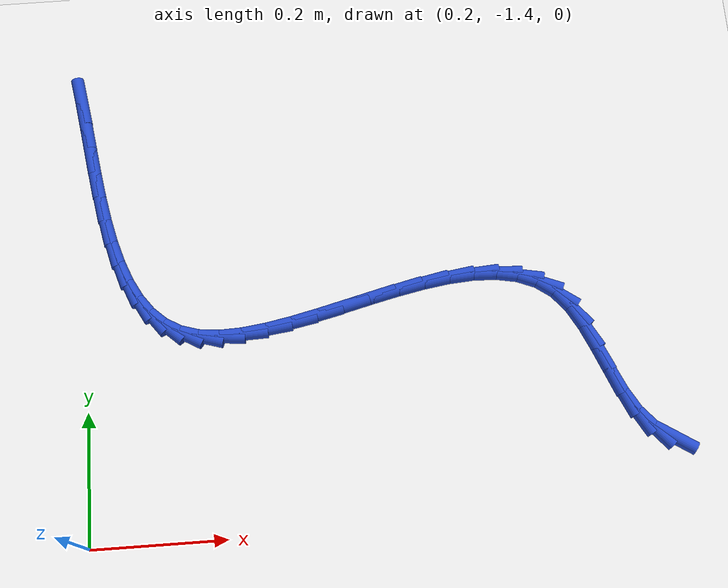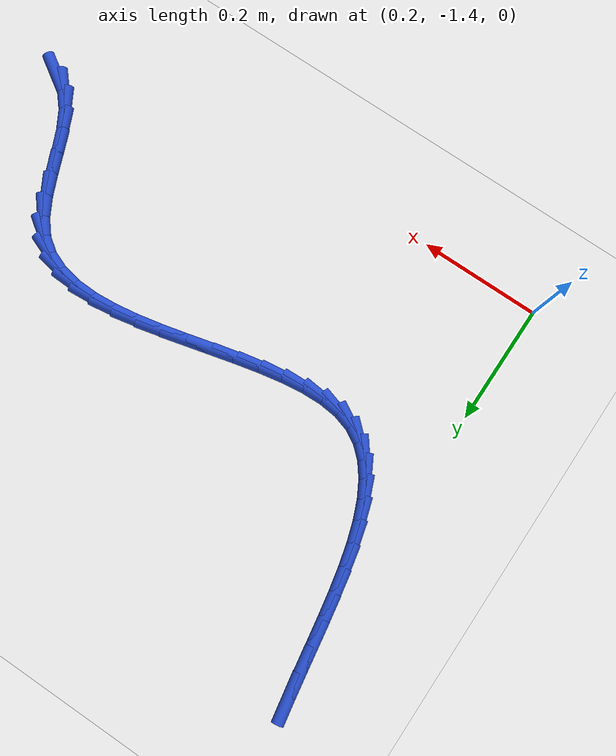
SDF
<sdf version="1.6">
 <world name="default">
  <model name="ground_plane">
   <static>1</static>
   <link name="link">
    <collision name="collision">
     <geometry><plane><normal>0 0 1</normal><size>100 100</size></plane></geometry>
     <surface><friction><ode><mu>100</mu><mu2>50</mu2></ode></friction></surface>
    </collision>
    <visual name="visual">
     <cast_shadows>0</cast_shadows>
     <geometry><plane><normal>0 0 1</normal><size>100 100</size></plane></geometry>
     <material>
      <script><uri>file://media/materials/scripts/gazebo.material</uri><name>Gazebo/WhiteGlow</name></script>
     </material>
    </visual>
   </link>
  </model>
  <model name="line">
   <link name="link_164">
    <pose>1.0530648503604034 -1.298341308711438 0.01 0 1.57 -0.5783632018826566</pose>
    <collision name="collision">
     <geometry><cylinder><radius>0.01</radius><length>0.08</length></cylinder></geometry>
    </collision>
    <visual name="visual">
     <material>
      <script><name>Gazebo/Blue</name><uri>file://media/materials/scripts/gazebo.material</uri></script>
     </material>
     <geometry><cylinder><radius>0.01</radius><length>0.08</length></cylinder></geometry>
    </visual>
   </link>
   <link name="link_165">
    <pose>1.0280571245131487 -1.2820154758836633 0.01 0 1.57 -0.8617952457543253</pose>
    <collision name="collision">
     <geometry><cylinder><radius>0.01</radius><length>0.08</length></cylinder></geometry>
    </collision>
    <visual name="visual">
     <material>
      <script><name>Gazebo/Blue</name><uri>file://media/materials/scripts/gazebo.material</uri></script>
     </material>
     <geometry><cylinder><radius>0.01</radius><length>0.08</length></cylinder></geometry>
    </visual>
   </link>
   <link name="link_166">
    <pose>1.007418347064766 -1.2579551588173083 0.01 0 1.57 -1.0571612030926565</pose>
    <collision name="collision">
     <geometry><cylinder><radius>0.01</radius><length>0.08</length></cylinder></geometry>
    </collision>
    <visual name="visual">
     <material>
      <script><name>Gazebo/Blue</name><uri>file://media/materials/scripts/gazebo.material</uri></script>
     </material>
     <geometry><cylinder><radius>0.01</radius><length>0.08</length></cylinder></geometry>
    </visual>
   </link>
   <link name="link_167">
    <pose>0.9903157041266589 -1.2276389001822656 0.01 0 1.57 -1.15729824692002</pose>
    <collision name="collision">
     <geometry><cylinder><radius>0.01</radius><length>0.08</length></cylinder></geometry>
    </collision>
    <visual name="visual">
     <material>
      <script><name>Gazebo/Blue</name><uri>file://media/materials/scripts/gazebo.material</uri></script>
     </material>
     <geometry><cylinder><radius>0.01</radius><length>0.08</length></cylinder></geometry>
    </visual>
   </link>
   <link name="link_168">
    <pose>0.9753299583116783 -1.1934869687395804 0.01 0 1.57 -1.1886875338098977</pose>
    <collision name="collision">
     <geometry><cylinder><radius>0.01</radius><length>0.08</length></cylinder></geometry>
    </collision>
    <visual name="visual">
     <material>
      <script><name>Gazebo/Blue</name><uri>file://media/materials/scripts/gazebo.material</uri></script>
     </material>
     <geometry><cylinder><radius>0.01</radius><length>0.08</length></cylinder></geometry>
    </visual>
   </link>
   <link name="link_169">
    <pose>0.9610388313851213 -1.157924516488244 0.01 0 1.57 -1.1607178081552558</pose>
    <collision name="collision">
     <geometry><cylinder><radius>0.01</radius><length>0.08</length></cylinder></geometry>
    </collision>
    <visual name="visual">
     <material>
      <script><name>Gazebo/Blue</name><uri>file://media/materials/scripts/gazebo.material</uri></script>
     </material>
     <geometry><cylinder><radius>0.01</radius><length>0.08</length></cylinder></geometry>
    </visual>
   </link>
   <link name="link_170">
    <pose>0.9460200451122849 -1.1233766954272506 0.01 0 1.57 -1.0664906803665173</pose>
    <collision name="collision">
     <geometry><cylinder><radius>0.01</radius><length>0.08</length></cylinder></geometry>
    </collision>
    <visual name="visual">
     <material>
      <script><name>Gazebo/Blue</name><uri>file://media/materials/scripts/gazebo.material</uri></script>
     </material>
     <geometry><cylinder><radius>0.01</radius><length>0.08</length></cylinder></geometry>
    </visual>
   </link>
   <link name="link_171">
    <pose>0.9288513212584655 -1.0922686575555913 0.01 0 1.57 -0.8834860548816408</pose>
    <collision name="collision">
     <geometry><cylinder><radius>0.01</radius><length>0.08</length></cylinder></geometry>
    </collision>
    <visual name="visual">
     <material>
      <script><name>Gazebo/Blue</name><uri>file://media/materials/scripts/gazebo.material</uri></script>
     </material>
     <geometry><cylinder><radius>0.01</radius><length>0.08</length></cylinder></geometry>
    </visual>
   </link>
   <link name="link_172">
    <pose>0.9081191551959903 -1.0670109151466078 0.01 0 1.57 -0.626903478290894</pose>
    <collision name="collision">
     <geometry><cylinder><radius>0.01</radius><length>0.08</length></cylinder></geometry>
    </collision>
    <visual name="visual">
     <material>
      <script><name>Gazebo/Blue</name><uri>file://media/materials/scripts/gazebo.material</uri></script>
     </material>
     <geometry><cylinder><radius>0.01</radius><length>0.08</length></cylinder></geometry>
    </visual>
   </link>
   <link name="link_173">
    <pose>0.8830896528711151 -1.048879975688991 0.01 0 1.57 -0.3831063007782831</pose>
    <collision name="collision">
     <geometry><cylinder><radius>0.01</radius><length>0.08</length></cylinder></geometry>
    </collision>
    <visual name="visual">
     <material>
      <script><name>Gazebo/Blue</name><uri>file://media/materials/scripts/gazebo.material</uri></script>
     </material>
     <geometry><cylinder><radius>0.01</radius><length>0.08</length></cylinder></geometry>
    </visual>
   </link>
   <link name="link_174">
    <pose>0.8541813560338329 -1.0372293811297328 0.01 0 1.57 -0.18399720258285554</pose>
    <collision name="collision">
     <geometry><cylinder><radius>0.01</radius><length>0.08</length></cylinder></geometry>
    </collision>
    <visual name="visual">
     <material>
      <script><name>Gazebo/Blue</name><uri>file://media/materials/scripts/gazebo.material</uri></script>
     </material>
     <geometry><cylinder><radius>0.01</radius><length>0.08</length></cylinder></geometry>
    </visual>
   </link>
   <link name="link_175">
    <pose>0.8219244938353868 -1.0312263107365713 0.01 0 1.57 -0.033867593646662156</pose>
    <collision name="collision">
     <geometry><cylinder><radius>0.01</radius><length>0.08</length></cylinder></geometry>
    </collision>
    <visual name="visual">
     <material>
      <script><name>Gazebo/Blue</name><uri>file://media/materials/scripts/gazebo.material</uri></script>
     </material>
     <geometry><cylinder><radius>0.01</radius><length>0.08</length></cylinder></geometry>
    </visual>
   </link>
   <link name="link_176">
    <pose>0.7868492954270212 -1.0300379437772467 0.01 0 1.57 0.07462744120473874</pose>
    <collision name="collision">
     <geometry><cylinder><radius>0.01</radius><length>0.08</length></cylinder></geometry>
    </collision>
    <visual name="visual">
     <material>
      <script><name>Gazebo/Blue</name><uri>file://media/materials/scripts/gazebo.material</uri></script>
     </material>
     <geometry><cylinder><radius>0.01</radius><length>0.08</length></cylinder></geometry>
    </visual>
   </link>
   <link name="link_177">
    <pose>0.7494859899599794 -1.0328314595194978 0.01 0 1.57 0.150749366277007</pose>
    <collision name="collision">
     <geometry><cylinder><radius>0.01</radius><length>0.08</length></cylinder></geometry>
    </collision>
    <visual name="visual">
     <material>
      <script><name>Gazebo/Blue</name><uri>file://media/materials/scripts/gazebo.material</uri></script>
     </material>
     <geometry><cylinder><radius>0.01</radius><length>0.08</length></cylinder></geometry>
    </visual>
   </link>
   <link name="link_178">
    <pose>0.7103648065855052 -1.0387740372310648 0.01 0 1.57 0.20189671612123583</pose>
    <collision name="collision">
     <geometry><cylinder><radius>0.01</radius><length>0.08</length></cylinder></geometry>
    </collision>
    <visual name="visual">
     <material>
      <script><name>Gazebo/Blue</name><uri>file://media/materials/scripts/gazebo.material</uri></script>
     </material>
     <geometry><cylinder><radius>0.01</radius><length>0.08</length></cylinder></geometry>
    </visual>
   </link>
   <link name="link_179">
    <pose>0.6700159744548436 -1.0470328561796869 0.01 0 1.57 0.2330357663085575</pose>
    <collision name="collision">
     <geometry><cylinder><radius>0.01</radius><length>0.08</length></cylinder></geometry>
    </collision>
    <visual name="visual">
     <material>
      <script><name>Gazebo/Blue</name><uri>file://media/materials/scripts/gazebo.material</uri></script>
     </material>
     <geometry><cylinder><radius>0.01</radius><length>0.08</length></cylinder></geometry>
    </visual>
   </link>
   <link name="link_180">
    <pose>0.6289697227192378 -1.0567750956331028 0.01 0 1.57 0.2470210091726582</pose>
    <collision name="collision">
     <geometry><cylinder><radius>0.01</radius><length>0.08</length></cylinder></geometry>
    </collision>
    <visual name="visual">
     <material>
      <script><name>Gazebo/Blue</name><uri>file://media/materials/scripts/gazebo.material</uri></script>
     </material>
     <geometry><cylinder><radius>0.01</radius><length>0.08</length></cylinder></geometry>
    </visual>
   </link>
   <link name="link_181">
    <pose>0.5877562805299321 -1.067167934859053 0.01 0 1.57 0.24493298416310105</pose>
    <collision name="collision">
     <geometry><cylinder><radius>0.01</radius><length>0.08</length></cylinder></geometry>
    </collision>
    <visual name="visual">
     <material>
      <script><name>Gazebo/Blue</name><uri>file://media/materials/scripts/gazebo.material</uri></script>
     </material>
     <geometry><cylinder><radius>0.01</radius><length>0.08</length></cylinder></geometry>
    </visual>
   </link>
   <link name="link_182">
    <pose>0.546905877038169 -1.0773785531252762 0.01 0 1.57 0.2261975798802815</pose>
    <collision name="collision">
     <geometry><cylinder><radius>0.01</radius><length>0.08</length></cylinder></geometry>
    </collision>
    <visual name="visual">
     <material>
      <script><name>Gazebo/Blue</name><uri>file://media/materials/scripts/gazebo.material</uri></script>
     </material>
     <geometry><cylinder><radius>0.01</radius><length>0.08</length></cylinder></geometry>
    </visual>
   </link>
   <link name="link_183">
    <pose>0.5069487413951947 -1.0865741296995126 0.01 0 1.57 0.18842117513690193</pose>
    <collision name="collision">
     <geometry><cylinder><radius>0.01</radius><length>0.08</length></cylinder></geometry>
    </collision>
    <visual name="visual">
     <material>
      <script><name>Gazebo/Blue</name><uri>file://media/materials/scripts/gazebo.material</uri></script>
     </material>
     <geometry><cylinder><radius>0.01</radius><length>0.08</length></cylinder></geometry>
    </visual>
   </link>
   <link name="link_184">
    <pose>0.46841510275225196 -1.0939218438495004 0.01 0 1.57 0.12689894920194486</pose>
    <collision name="collision">
     <geometry><cylinder><radius>0.01</radius><length>0.08</length></cylinder></geometry>
    </collision>
    <visual name="visual">
     <material>
      <script><name>Gazebo/Blue</name><uri>file://media/materials/scripts/gazebo.material</uri></script>
     </material>
     <geometry><cylinder><radius>0.01</radius><length>0.08</length></cylinder></geometry>
    </visual>
   </link>
   <link name="link_185">
    <pose>0.43183519026058476 -1.0985888748429802 0.01 0 1.57 0.03381888636327648</pose>
    <collision name="collision">
     <geometry><cylinder><radius>0.01</radius><length>0.08</length></cylinder></geometry>
    </collision>
    <visual name="visual">
     <material>
      <script><name>Gazebo/Blue</name><uri>file://media/materials/scripts/gazebo.material</uri></script>
     </material>
     <geometry><cylinder><radius>0.01</radius><length>0.08</length></cylinder></geometry>
    </visual>
   </link>
   <link name="link_186">
    <pose>0.3977392330714361 -1.099742401947691 0.01 0 1.57 -0.10236346783142093</pose>
    <collision name="collision">
     <geometry><cylinder><radius>0.01</radius><length>0.08</length></cylinder></geometry>
    </collision>
    <visual name="visual">
     <material>
      <script><name>Gazebo/Blue</name><uri>file://media/materials/scripts/gazebo.material</uri></script>
     </material>
     <geometry><cylinder><radius>0.01</radius><length>0.08</length></cylinder></geometry>
    </visual>
   </link>
   <link name="link_187">
    <pose>0.3666574603360517 -1.0965496044313718 0.01 0 1.57 -0.29448633689214776</pose>
    <collision name="collision">
     <geometry><cylinder><radius>0.01</radius><length>0.08</length></cylinder></geometry>
    </collision>
    <visual name="visual">
     <material>
      <script><name>Gazebo/Blue</name><uri>file://media/materials/scripts/gazebo.material</uri></script>
     </material>
     <geometry><cylinder><radius>0.01</radius><length>0.08</length></cylinder></geometry>
    </visual>
   </link>
   <link name="link_188">
    <pose>0.3391090589153595 -1.0881940306064584 0.01 0 1.57 -0.5231765452382854</pose>
    <collision name="collision">
     <geometry><cylinder><radius>0.01</radius><length>0.08</length></cylinder></geometry>
    </collision>
    <visual name="visual">
     <material>
      <script><name>Gazebo/Blue</name><uri>file://media/materials/scripts/gazebo.material</uri></script>
     </material>
     <geometry><cylinder><radius>0.01</radius><length>0.08</length></cylinder></geometry>
    </visual>
   </link>
   <link name="link_189">
    <pose>0.31523311607015475 -1.0744226868331046 0.01 0 1.57 -0.7400178746879528</pose>
    <collision name="collision">
     <geometry><cylinder><radius>0.01</radius><length>0.08</length></cylinder></geometry>
    </collision>
    <visual name="visual">
     <material>
      <script><name>Gazebo/Blue</name><uri>file://media/materials/scripts/gazebo.material</uri></script>
     </material>
     <geometry><cylinder><radius>0.01</radius><length>0.08</length></cylinder></geometry>
    </visual>
   </link>
   <link name="link_190">
    <pose>0.29470165567712225 -1.055674952266596 0.01 0 1.57 -0.924220145069302</pose>
    <collision name="collision">
     <geometry><cylinder><radius>0.01</radius><length>0.08</length></cylinder></geometry>
    </collision>
    <visual name="visual">
     <material>
      <script><name>Gazebo/Blue</name><uri>file://media/materials/scripts/gazebo.material</uri></script>
     </material>
     <geometry><cylinder><radius>0.01</radius><length>0.08</length></cylinder></geometry>
    </visual>
   </link>
   <link name="link_191">
    <pose>0.2771580347962528 -1.0324327016306516 0.01 0 1.57 -1.0701463854295814</pose>
    <collision name="collision">
     <geometry><cylinder><radius>0.01</radius><length>0.08</length></cylinder></geometry>
    </collision>
    <visual name="visual">
     <material>
      <script><name>Gazebo/Blue</name><uri>file://media/materials/scripts/gazebo.material</uri></script>
     </material>
     <geometry><cylinder><radius>0.01</radius><length>0.08</length></cylinder></geometry>
    </visual>
   </link>
   <link name="link_192">
    <pose>0.2622456104875362 -1.0051778096489898 0.01 0 1.57 -1.1812611785711795</pose>
    <collision name="collision">
     <geometry><cylinder><radius>0.01</radius><length>0.08</length></cylinder></geometry>
    </collision>
    <visual name="visual">
     <material>
      <script><name>Gazebo/Blue</name><uri>file://media/materials/scripts/gazebo.material</uri></script>
     </material>
     <geometry><cylinder><radius>0.01</radius><length>0.08</length></cylinder></geometry>
    </visual>
   </link>
   <link name="link_193">
    <pose>0.2496077398109627 -0.9743921510453306 0.01 0 1.57 -1.263967286999131</pose>
    <collision name="collision">
     <geometry><cylinder><radius>0.01</radius><length>0.08</length></cylinder></geometry>
    </collision>
    <visual name="visual">
     <material>
      <script><name>Gazebo/Blue</name><uri>file://media/materials/scripts/gazebo.material</uri></script>
     </material>
     <geometry><cylinder><radius>0.01</radius><length>0.08</length></cylinder></geometry>
    </visual>
   </link>
   <link name="link_194">
    <pose>0.23888777982652243 -0.940557600543392 0.01 0 1.57 -1.324310855719715</pose>
    <collision name="collision">
     <geometry><cylinder><radius>0.01</radius><length>0.08</length></cylinder></geometry>
    </collision>
    <visual name="visual">
     <material>
      <script><name>Gazebo/Blue</name><uri>file://media/materials/scripts/gazebo.material</uri></script>
     </material>
     <geometry><cylinder><radius>0.01</radius><length>0.08</length></cylinder></geometry>
    </visual>
   </link>
   <link name="link_195">
    <pose>0.22972908759420535 -0.9041560328668924 0.01 0 1.57 -1.36699513455402</pose>
    <collision name="collision">
     <geometry><cylinder><radius>0.01</radius><length>0.08</length></cylinder></geometry>
    </collision>
    <visual name="visual">
     <material>
      <script><name>Gazebo/Blue</name><uri>file://media/materials/scripts/gazebo.material</uri></script>
     </material>
     <geometry><cylinder><radius>0.01</radius><length>0.08</length></cylinder></geometry>
    </visual>
   </link>
   <link name="link_196">
    <pose>0.2217750201740022 -0.8656693227395524 0.01 0 1.57 -1.3953650436848444</pose>
    <collision name="collision">
     <geometry><cylinder><radius>0.01</radius><length>0.08</length></cylinder></geometry>
    </collision>
    <visual name="visual">
     <material>
      <script><name>Gazebo/Blue</name><uri>file://media/materials/scripts/gazebo.material</uri></script>
     </material>
     <geometry><cylinder><radius>0.01</radius><length>0.08</length></cylinder></geometry>
    </visual>
   </link>
   <link name="link_197">
    <pose>0.21466893462590278 -0.8255793448850901 0.01 0 1.57 -1.4116459756434048</pose>
    <collision name="collision">
     <geometry><cylinder><radius>0.01</radius><length>0.08</length></cylinder></geometry>
    </collision>
    <visual name="visual">
     <material>
      <script><name>Gazebo/Blue</name><uri>file://media/materials/scripts/gazebo.material</uri></script>
     </material>
     <geometry><cylinder><radius>0.01</radius><length>0.08</length></cylinder></geometry>
    </visual>
   </link>
   <link name="link_198">
    <pose>0.20805418800989736 -0.7843679740272241 0.01 0 1.57 -1.4171795680348525</pose>
    <collision name="collision">
     <geometry><cylinder><radius>0.01</radius><length>0.08</length></cylinder></geometry>
    </collision>
    <visual name="visual">
     <material>
      <script><name>Gazebo/Blue</name><uri>file://media/materials/scripts/gazebo.material</uri></script>
     </material>
     <geometry><cylinder><radius>0.01</radius><length>0.08</length></cylinder></geometry>
    </visual>
   </link>
   <link name="link_199">
    <pose>0.20157413738597607 -0.7425170848896732 0.01 0 1.57 -1.412590629943781</pose>
    <collision name="collision">
     <geometry><cylinder><radius>0.01</radius><length>0.08</length></cylinder></geometry>
    </collision>
    <visual name="visual">
     <material>
      <script><name>Gazebo/Blue</name><uri>file://media/materials/scripts/gazebo.material</uri></script>
     </material>
     <geometry><cylinder><radius>0.01</radius><length>0.08</length></cylinder></geometry>
    </visual>
   </link>
   <link name="link_200">
    <pose>0.19487213981412924 -0.7005085521961574 0.01 0 1.57 -1.3978804050556621</pose>
    <collision name="collision">
     <geometry><cylinder><radius>0.01</radius><length>0.08</length></cylinder></geometry>
    </collision>
    <visual name="visual">
     <material>
      <script><name>Gazebo/Blue</name><uri>file://media/materials/scripts/gazebo.material</uri></script>
     </material>
     <geometry><cylinder><radius>0.01</radius><length>0.08</length></cylinder></geometry>
    </visual>
   </link>
  </model>
 </world>
</sdf>
